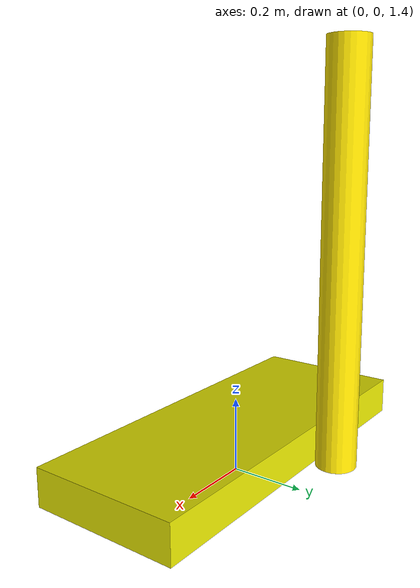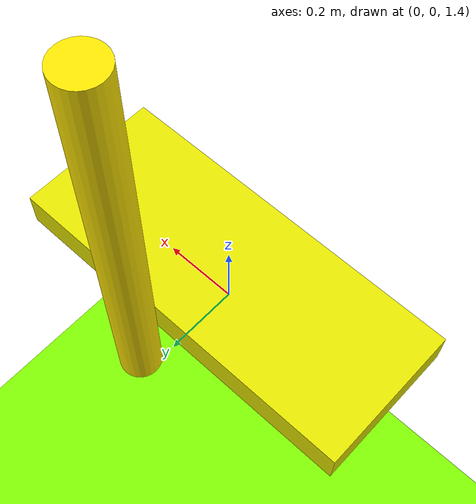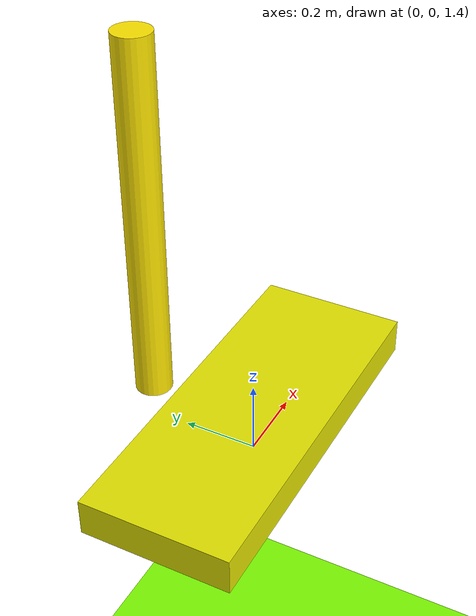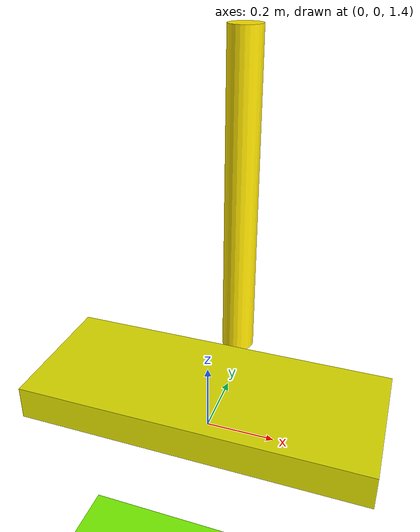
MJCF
<mujoco>
	<option>
		<flag sensornoise="enable" />
	</option>
	<worldbody>
        <light diffuse=".5 .5 .5" pos="0 0 3" dir="0 0 -1"/>
		<geom type="plane" size="1 1 0.1" rgba=".5 1 0 1"/>
		<body name = "chassis" pos="0 0 1.5" euler='0 90 0'>
			<!-- joint type="free"/-->
			<joint name = "base" type="slide" axis="0 0 -1"/>
			<geom type="box" size=".05 .2 .5" rgba=".9 .9 0 1" mass="1"/>
			<body pos="-0.5 0.3 0" euler="0 90 0">
				<joint name="j2" type="hinge" axis = "0 -1 0" pos="0 0 0.5" damping="0.01" />
				<geom type="cylinder" size="0.05 0.5" rgba="1 .9 0 1" mass="0.1"/>
			</body>

		</body>
	</worldbody>

	<actuator>
		<motor joint="base" name="torque" gear="1" ctrllimited="true" ctrlrange="-100 100" />
	</actuator>
	<sensor>
		<jointpos joint="base" noise="0.5"/>
		<jointvel joint="base" noise="1"/>
		<jointpos joint="j2" noise="0.5"/>
		<jointvel joint="j2" noise="1" />
	</sensor>

</mujoco>
